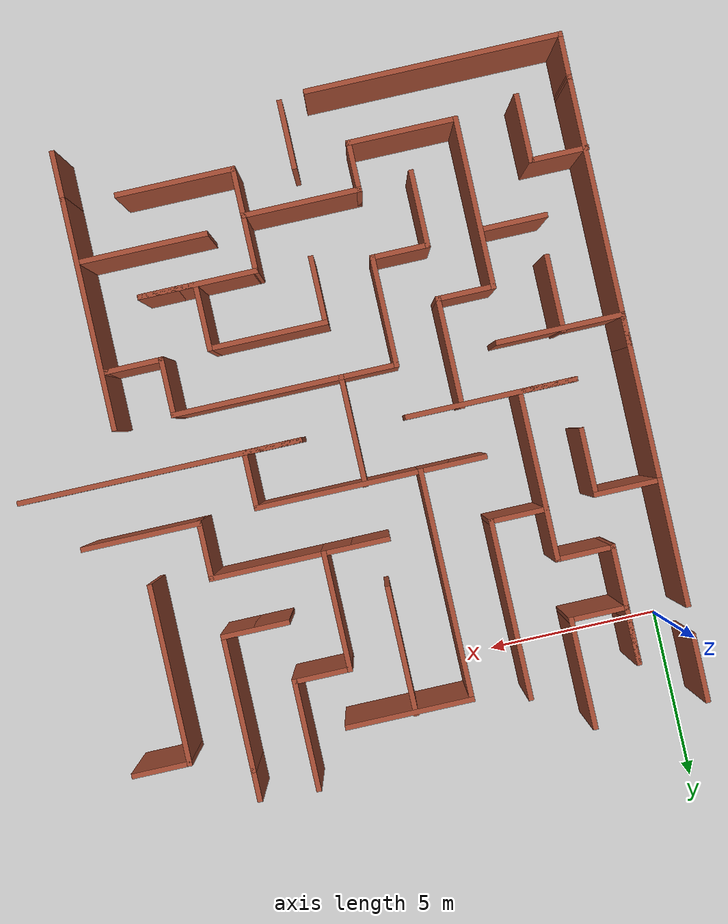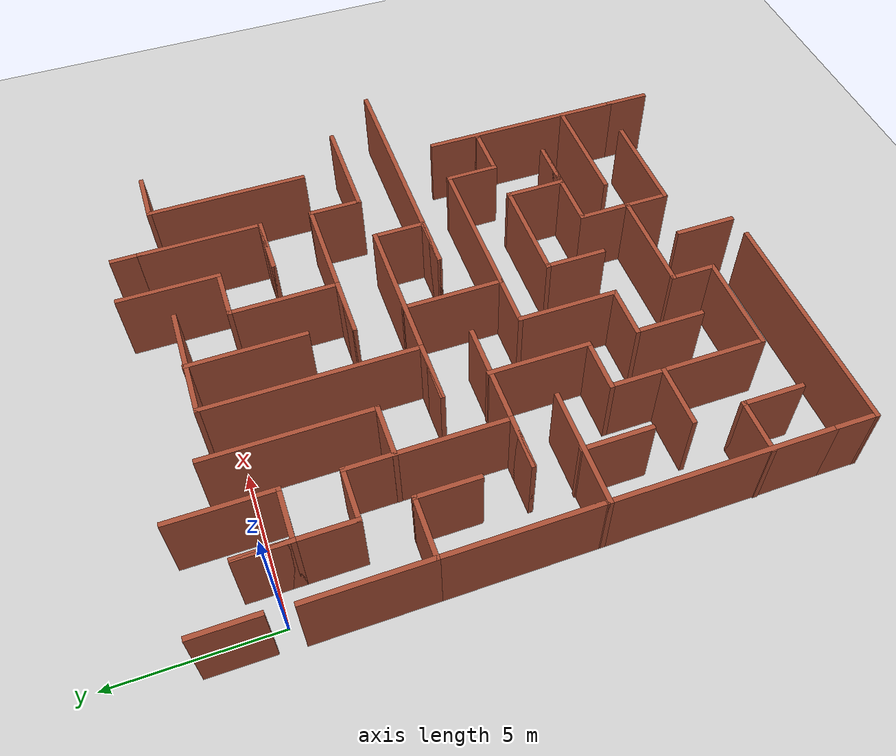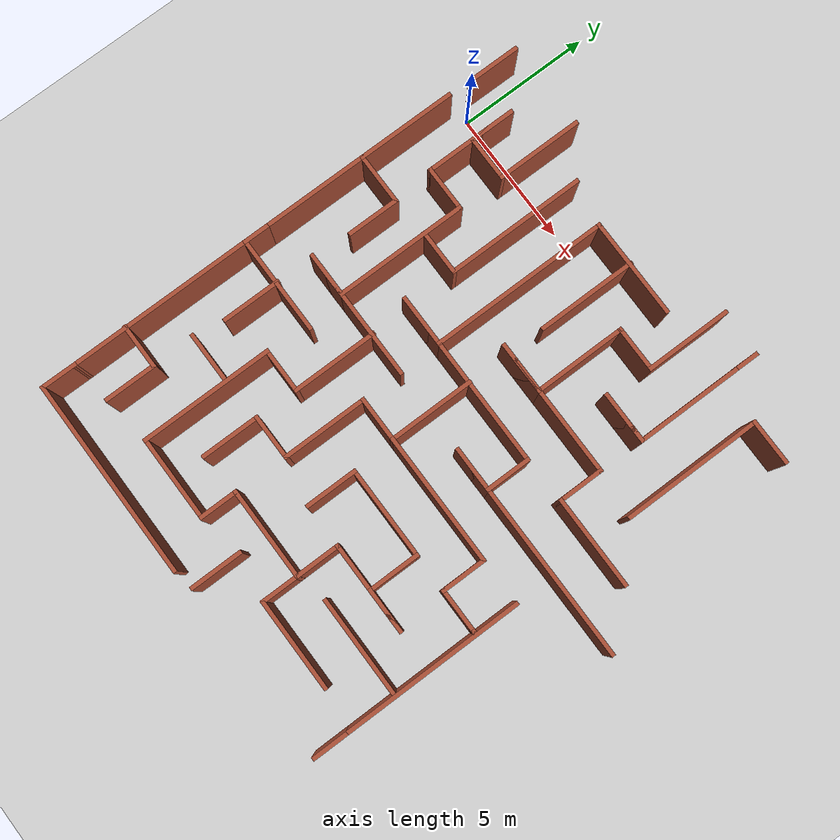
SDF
<sdf version="1.7">
 <world name="default">
  <model name="ground_plane">
   <static>1</static>
   <link name="link">
    <collision name="collision">
     <geometry><plane><normal>0 0 1</normal><size>100 100</size></plane></geometry>
     <surface>
      <contact><collide_bitmask>65535</collide_bitmask></contact>
      <friction><ode><mu>100</mu><mu2>50</mu2></ode></friction>
     </surface>
    </collision>
    <visual name="visual">
     <cast_shadows>0</cast_shadows>
     <geometry><plane><normal>0 0 1</normal><size>100 100</size></plane></geometry>
     <material>
      <script><uri>file://media/materials/scripts/gazebo.material</uri><name>Gazebo/Grey</name></script>
     </material>
    </visual>
   </link>
  </model>
  <model name="model_maze_2">
   <pose>15.6512 -7.28491 0 0 -0 0</pose>
   <link name="Wall_0">
    <collision name="Wall_0_Collision">
     <geometry><box><size>2 0.15 2.5</size></box></geometry>
     <pose>0 0 1.25 0 -0 0</pose>
    </collision>
    <visual name="Wall_0_Visual">
     <pose>0 0 1.25 0 -0 0</pose>
     <geometry><box><size>2 0.15 2.5</size></box></geometry>
     <material>
      <script><uri>file://media/materials/scripts/gazebo.material</uri><name>Gazebo/Bricks</name></script>
      <ambient>1 1 1 1</ambient>
     </material>
     <meta><layer>0</layer></meta>
    </visual>
    <pose>-16.1592 8.67968 0 0 -0 1.5708</pose>
   </link>
   <link name="Wall_10">
    <collision name="Wall_10_Collision">
     <geometry><box><size>1.75 0.15 2.5</size></box></geometry>
     <pose>0 0 1.25 0 -0 0</pose>
    </collision>
    <visual name="Wall_10_Visual">
     <pose>0 0 1.25 0 -0 0</pose>
     <geometry><box><size>1.75 0.15 2.5</size></box></geometry>
     <material>
      <script><uri>file://media/materials/scripts/gazebo.material</uri><name>Gazebo/Bricks</name></script>
      <ambient>1 1 1 1</ambient>
     </material>
     <meta><layer>0</layer></meta>
    </visual>
    <pose>-13.6978 -0.048612 0 0 -0 3.14159</pose>
   </link>
   <link name="Wall_11">
    <collision name="Wall_11_Collision">
     <geometry><box><size>5 0.15 2.5</size></box></geometry>
     <pose>0 0 1.25 0 -0 0</pose>
    </collision>
    <visual name="Wall_11_Visual">
     <pose>0 0 1.25 0 -0 0</pose>
     <geometry><box><size>5 0.15 2.5</size></box></geometry>
     <material>
      <script><uri>file://media/materials/scripts/gazebo.material</uri><name>Gazebo/Bricks</name></script>
      <ambient>1 1 1 1</ambient>
     </material>
     <meta><layer>0</layer></meta>
    </visual>
    <pose>-12.0728 -0.048612 0 0 -0 0</pose>
   </link>
   <link name="Wall_127">
    <collision name="Wall_127_Collision">
     <geometry><box><size>6.75 0.15 2.5</size></box></geometry>
     <pose>0 0 1.25 0 -0 0</pose>
    </collision>
    <visual name="Wall_127_Visual">
     <pose>0 0 1.25 0 -0 0</pose>
     <geometry><box><size>6.75 0.15 2.5</size></box></geometry>
     <material>
      <script><uri>file://media/materials/scripts/gazebo.material</uri><name>Gazebo/Bricks</name></script>
      <ambient>1 1 1 1</ambient>
     </material>
     <meta><layer>0</layer></meta>
    </visual>
    <pose>-1.48782 -4.85594 0 0 -0 -1.5708</pose>
   </link>
   <link name="Wall_13">
    <collision name="Wall_13_Collision">
     <geometry><box><size>3.75 0.15 2.5</size></box></geometry>
     <pose>0 0 1.25 0 -0 0</pose>
    </collision>
    <visual name="Wall_13_Visual">
     <pose>0 0 1.25 0 -0 0</pose>
     <geometry><box><size>3.75 0.15 2.5</size></box></geometry>
     <material>
      <script><uri>file://media/materials/scripts/gazebo.material</uri><name>Gazebo/Bricks</name></script>
      <ambient>1 1 1 1</ambient>
     </material>
     <meta><layer>0</layer></meta>
    </visual>
    <pose>-16.2054 5.05258 0 0 -0 -1.5708</pose>
   </link>
   <link name="Wall_130">
    <collision name="Wall_130_Collision">
     <geometry><box><size>1.75 0.15 2.5</size></box></geometry>
     <pose>0 0 1.25 0 -0 0</pose>
    </collision>
    <visual name="Wall_130_Visual">
     <pose>0 0 1.25 0 -0 0</pose>
     <geometry><box><size>1.75 0.15 2.5</size></box></geometry>
     <material>
      <script><uri>file://media/materials/scripts/gazebo.material</uri><name>Gazebo/Bricks</name></script>
      <ambient>1 1 1 1</ambient>
     </material>
     <meta><layer>0</layer></meta>
    </visual>
    <pose>-8.86181 -1.55587 0 0 -0 3.14159</pose>
   </link>
   <link name="Wall_131">
    <collision name="Wall_131_Collision">
     <geometry><box><size>3.25 0.15 2.5</size></box></geometry>
     <pose>0 0 1.25 0 -0 0</pose>
    </collision>
    <visual name="Wall_131_Visual">
     <pose>0 0 1.25 0 -0 0</pose>
     <geometry><box><size>3.25 0.15 2.5</size></box></geometry>
     <material>
      <script><uri>file://media/materials/scripts/gazebo.material</uri><name>Gazebo/Bricks</name></script>
      <ambient>1 1 1 1</ambient>
     </material>
     <meta><layer>0</layer></meta>
    </visual>
    <pose>-9.66181 -3.10587 0 0 -0 -1.5708</pose>
   </link>
   <link name="Wall_132">
    <collision name="Wall_132_Collision">
     <geometry><box><size>1.75 0.15 2.5</size></box></geometry>
     <pose>0 0 1.25 0 -0 0</pose>
    </collision>
    <visual name="Wall_132_Visual">
     <pose>0 0 1.25 0 -0 0</pose>
     <geometry><box><size>1.75 0.15 2.5</size></box></geometry>
     <material>
      <script><uri>file://media/materials/scripts/gazebo.material</uri><name>Gazebo/Bricks</name></script>
      <ambient>1 1 1 1</ambient>
     </material>
     <meta><layer>0</layer></meta>
    </visual>
    <pose>-10.4618 -4.65587 0 0 -0 3.14159</pose>
   </link>
   <link name="Wall_133">
    <collision name="Wall_133_Collision">
     <geometry><box><size>2.25 0.15 2.5</size></box></geometry>
     <pose>0 0 1.25 0 -0 0</pose>
    </collision>
    <visual name="Wall_133_Visual">
     <pose>0 0 1.25 0 -0 0</pose>
     <geometry><box><size>2.25 0.15 2.5</size></box></geometry>
     <material>
      <script><uri>file://media/materials/scripts/gazebo.material</uri><name>Gazebo/Bricks</name></script>
      <ambient>1 1 1 1</ambient>
     </material>
     <meta><layer>0</layer></meta>
    </visual>
    <pose>-11.2618 -5.70587 0 0 -0 -1.5708</pose>
   </link>
   <link name="Wall_135">
    <collision name="Wall_135_Collision">
     <geometry><box><size>5 0.15 2.5</size></box></geometry>
     <pose>0 0 1.25 0 -0 0</pose>
    </collision>
    <visual name="Wall_135_Visual">
     <pose>0 0 1.25 0 -0 0</pose>
     <geometry><box><size>5 0.15 2.5</size></box></geometry>
     <material>
      <script><uri>file://media/materials/scripts/gazebo.material</uri><name>Gazebo/Bricks</name></script>
      <ambient>1 1 1 1</ambient>
     </material>
     <meta><layer>0</layer></meta>
    </visual>
    <pose>-5.63681 -1.55587 0 0 -0 0</pose>
   </link>
   <link name="Wall_136">
    <collision name="Wall_136_Collision">
     <geometry><box><size>1.75 0.15 2.5</size></box></geometry>
     <pose>0 0 1.25 0 -0 0</pose>
    </collision>
    <visual name="Wall_136_Visual">
     <pose>0 0 1.25 0 -0 0</pose>
     <geometry><box><size>1.75 0.15 2.5</size></box></geometry>
     <material>
      <script><uri>file://media/materials/scripts/gazebo.material</uri><name>Gazebo/Bricks</name></script>
      <ambient>1 1 1 1</ambient>
     </material>
     <meta><layer>0</layer></meta>
    </visual>
    <pose>-3.21181 -2.35587 0 0 -0 -1.5708</pose>
   </link>
   <link name="Wall_137">
    <collision name="Wall_137_Collision">
     <geometry><box><size>1.75 0.15 2.5</size></box></geometry>
     <pose>0 0 1.25 0 -0 0</pose>
    </collision>
    <visual name="Wall_137_Visual">
     <pose>0 0 1.25 0 -0 0</pose>
     <geometry><box><size>1.75 0.15 2.5</size></box></geometry>
     <material>
      <script><uri>file://media/materials/scripts/gazebo.material</uri><name>Gazebo/Bricks</name></script>
      <ambient>1 1 1 1</ambient>
     </material>
     <meta><layer>0</layer></meta>
    </visual>
    <pose>-2.41181 -3.15587 0 0 -0 0</pose>
   </link>
   <link name="Wall_138">
    <collision name="Wall_138_Collision">
     <geometry><box><size>0.15 0.15 2.5</size></box></geometry>
     <pose>0 0 1.25 0 -0 0</pose>
    </collision>
    <visual name="Wall_138_Visual">
     <pose>0 0 1.25 0 -0 0</pose>
     <geometry><box><size>0.15 0.15 2.5</size></box></geometry>
     <material>
      <script><uri>file://media/materials/scripts/gazebo.material</uri><name>Gazebo/Bricks</name></script>
      <ambient>1 1 1 1</ambient>
     </material>
     <meta><layer>0</layer></meta>
    </visual>
    <pose>-1.61181 -3.15587 0 0 -0 0</pose>
   </link>
   <link name="Wall_14">
    <collision name="Wall_14_Collision">
     <geometry><box><size>2 0.15 2.5</size></box></geometry>
     <pose>0 0 1.25 0 -0 0</pose>
    </collision>
    <visual name="Wall_14_Visual">
     <pose>0 0 1.25 0 -0 0</pose>
     <geometry><box><size>2 0.15 2.5</size></box></geometry>
     <material>
      <script><uri>file://media/materials/scripts/gazebo.material</uri><name>Gazebo/Bricks</name></script>
      <ambient>1 1 1 1</ambient>
     </material>
     <meta><layer>0</layer></meta>
    </visual>
    <pose>-15.2804 3.25258 0 0 -0 0</pose>
   </link>
   <link name="Wall_140">
    <collision name="Wall_140_Collision">
     <geometry><box><size>3.25 0.15 2.5</size></box></geometry>
     <pose>0 0 1.25 0 -0 0</pose>
    </collision>
    <visual name="Wall_140_Visual">
     <pose>0 0 1.25 0 -0 0</pose>
     <geometry><box><size>3.25 0.15 2.5</size></box></geometry>
     <material>
      <script><uri>file://media/materials/scripts/gazebo.material</uri><name>Gazebo/Bricks</name></script>
      <ambient>1 1 1 1</ambient>
     </material>
     <meta><layer>0</layer></meta>
    </visual>
    <pose>-11.2176 -1.56101 0 0 -0 -1.5708</pose>
   </link>
   <link name="Wall_141">
    <collision name="Wall_141_Collision">
     <geometry><box><size>1.75 0.15 2.5</size></box></geometry>
     <pose>0 0 1.25 0 -0 0</pose>
    </collision>
    <visual name="Wall_141_Visual">
     <pose>0 0 1.25 0 -0 0</pose>
     <geometry><box><size>1.75 0.15 2.5</size></box></geometry>
     <material>
      <script><uri>file://media/materials/scripts/gazebo.material</uri><name>Gazebo/Bricks</name></script>
      <ambient>1 1 1 1</ambient>
     </material>
     <meta><layer>0</layer></meta>
    </visual>
    <pose>-12.0176 -3.11101 0 0 -0 3.14159</pose>
   </link>
   <link name="Wall_142">
    <collision name="Wall_142_Collision">
     <geometry><box><size>5 0.15 2.5</size></box></geometry>
     <pose>0 0 1.25 0 -0 0</pose>
    </collision>
    <visual name="Wall_142_Visual">
     <pose>0 0 1.25 0 -0 0</pose>
     <geometry><box><size>5 0.15 2.5</size></box></geometry>
     <material>
      <script><uri>file://media/materials/scripts/gazebo.material</uri><name>Gazebo/Bricks</name></script>
      <ambient>1 1 1 1</ambient>
     </material>
     <meta><layer>0</layer></meta>
    </visual>
    <pose>-12.8176 -5.53601 0 0 -0 -1.5708</pose>
   </link>
   <link name="Wall_143">
    <collision name="Wall_143_Collision">
     <geometry><box><size>3.25 0.15 2.5</size></box></geometry>
     <pose>0 0 1.25 0 -0 0</pose>
    </collision>
    <visual name="Wall_143_Visual">
     <pose>0 0 1.25 0 -0 0</pose>
     <geometry><box><size>3.25 0.15 2.5</size></box></geometry>
     <material>
      <script><uri>file://media/materials/scripts/gazebo.material</uri><name>Gazebo/Bricks</name></script>
      <ambient>1 1 1 1</ambient>
     </material>
     <meta><layer>0</layer></meta>
    </visual>
    <pose>-11.2676 -7.96101 0 0 -0 0</pose>
   </link>
   <link name="Wall_144">
    <collision name="Wall_144_Collision">
     <geometry><box><size>1.5 0.15 2.5</size></box></geometry>
     <pose>0 0 1.25 0 -0 0</pose>
    </collision>
    <visual name="Wall_144_Visual">
     <pose>0 0 1.25 0 -0 0</pose>
     <geometry><box><size>1.5 0.15 2.5</size></box></geometry>
     <material>
      <script><uri>file://media/materials/scripts/gazebo.material</uri><name>Gazebo/Bricks</name></script>
      <ambient>1 1 1 1</ambient>
     </material>
     <meta><layer>0</layer></meta>
    </visual>
    <pose>-9.71757 -7.28601 0 0 -0 1.5708</pose>
   </link>
   <link name="Wall_145">
    <collision name="Wall_145_Collision">
     <geometry><box><size>3.5 0.15 2.5</size></box></geometry>
     <pose>0 0 1.25 0 -0 0</pose>
    </collision>
    <visual name="Wall_145_Visual">
     <pose>0 0 1.25 0 -0 0</pose>
     <geometry><box><size>3.5 0.15 2.5</size></box></geometry>
     <material>
      <script><uri>file://media/materials/scripts/gazebo.material</uri><name>Gazebo/Bricks</name></script>
      <ambient>1 1 1 1</ambient>
     </material>
     <meta><layer>0</layer></meta>
    </visual>
    <pose>-8.04257 -6.61101 0 0 -0 0</pose>
   </link>
   <link name="Wall_146">
    <collision name="Wall_146_Collision">
     <geometry><box><size>1.75 0.15 2.5</size></box></geometry>
     <pose>0 0 1.25 0 -0 0</pose>
    </collision>
    <visual name="Wall_146_Visual">
     <pose>0 0 1.25 0 -0 0</pose>
     <geometry><box><size>1.75 0.15 2.5</size></box></geometry>
     <material>
      <script><uri>file://media/materials/scripts/gazebo.material</uri><name>Gazebo/Bricks</name></script>
      <ambient>1 1 1 1</ambient>
     </material>
     <meta><layer>0</layer></meta>
    </visual>
    <pose>-6.36757 -5.81101 0 0 -0 1.5708</pose>
   </link>
   <link name="Wall_147">
    <collision name="Wall_147_Collision">
     <geometry><box><size>3.5 0.15 2.5</size></box></geometry>
     <pose>0 0 1.25 0 -0 0</pose>
    </collision>
    <visual name="Wall_147_Visual">
     <pose>0 0 1.25 0 -0 0</pose>
     <geometry><box><size>3.5 0.15 2.5</size></box></geometry>
     <material>
      <script><uri>file://media/materials/scripts/gazebo.material</uri><name>Gazebo/Bricks</name></script>
      <ambient>1 1 1 1</ambient>
     </material>
     <meta><layer>0</layer></meta>
    </visual>
    <pose>-4.69257 -5.01101 0 0 -0 0</pose>
   </link>
   <link name="Wall_148">
    <collision name="Wall_148_Collision">
     <geometry><box><size>1.75 0.15 2.5</size></box></geometry>
     <pose>0 0 1.25 0 -0 0</pose>
    </collision>
    <visual name="Wall_148_Visual">
     <pose>0 0 1.25 0 -0 0</pose>
     <geometry><box><size>1.75 0.15 2.5</size></box></geometry>
     <material>
      <script><uri>file://media/materials/scripts/gazebo.material</uri><name>Gazebo/Bricks</name></script>
      <ambient>1 1 1 1</ambient>
     </material>
     <meta><layer>0</layer></meta>
    </visual>
    <pose>-3.81757 -5.01101 0 0 -0 3.14159</pose>
   </link>
   <link name="Wall_149">
    <collision name="Wall_149_Collision">
     <geometry><box><size>2 0.15 2.5</size></box></geometry>
     <pose>0 0 1.25 0 -0 0</pose>
    </collision>
    <visual name="Wall_149_Visual">
     <pose>0 0 1.25 0 -0 0</pose>
     <geometry><box><size>2 0.15 2.5</size></box></geometry>
     <material>
      <script><uri>file://media/materials/scripts/gazebo.material</uri><name>Gazebo/Bricks</name></script>
      <ambient>1 1 1 1</ambient>
     </material>
     <meta><layer>0</layer></meta>
    </visual>
    <pose>-4.61757 -4.08601 0 0 -0 1.5708</pose>
   </link>
   <link name="Wall_15">
    <collision name="Wall_15_Collision">
     <geometry><box><size>2 0.15 2.5</size></box></geometry>
     <pose>0 0 1.25 0 -0 0</pose>
    </collision>
    <visual name="Wall_15_Visual">
     <pose>0 0 1.25 0 -0 0</pose>
     <geometry><box><size>2 0.15 2.5</size></box></geometry>
     <material>
      <script><uri>file://media/materials/scripts/gazebo.material</uri><name>Gazebo/Bricks</name></script>
      <ambient>1 1 1 1</ambient>
     </material>
     <meta><layer>0</layer></meta>
    </visual>
    <pose>-14.3554 2.32758 0 0 -0 -1.5708</pose>
   </link>
   <link name="Wall_150">
    <collision name="Wall_150_Collision">
     <geometry><box><size>3.5 0.15 2.5</size></box></geometry>
     <pose>0 0 1.25 0 -0 0</pose>
    </collision>
    <visual name="Wall_150_Visual">
     <pose>0 0 1.25 0 -0 0</pose>
     <geometry><box><size>3.5 0.15 2.5</size></box></geometry>
     <material>
      <script><uri>file://media/materials/scripts/gazebo.material</uri><name>Gazebo/Bricks</name></script>
      <ambient>1 1 1 1</ambient>
     </material>
     <meta><layer>0</layer></meta>
    </visual>
    <pose>-6.29257 -3.16101 0 0 -0 3.14159</pose>
   </link>
   <link name="Wall_151">
    <collision name="Wall_151_Collision">
     <geometry><box><size>2 0.15 2.5</size></box></geometry>
     <pose>0 0 1.25 0 -0 0</pose>
    </collision>
    <visual name="Wall_151_Visual">
     <pose>0 0 1.25 0 -0 0</pose>
     <geometry><box><size>2 0.15 2.5</size></box></geometry>
     <material>
      <script><uri>file://media/materials/scripts/gazebo.material</uri><name>Gazebo/Bricks</name></script>
      <ambient>1 1 1 1</ambient>
     </material>
     <meta><layer>0</layer></meta>
    </visual>
    <pose>-7.96757 -4.08601 0 0 -0 -1.5708</pose>
   </link>
   <link name="Wall_153">
    <collision name="Wall_153_Collision">
     <geometry><box><size>3.75 0.15 2.5</size></box></geometry>
     <pose>0 0 1.25 0 -0 0</pose>
    </collision>
    <visual name="Wall_153_Visual">
     <pose>0 0 1.25 0 -0 0</pose>
     <geometry><box><size>3.75 0.15 2.5</size></box></geometry>
     <material>
      <script><uri>file://media/materials/scripts/gazebo.material</uri><name>Gazebo/Bricks</name></script>
      <ambient>1 1 1 1</ambient>
     </material>
     <meta><layer>0</layer></meta>
    </visual>
    <pose>-14.4054 -1.53763 0 0 -0 3.14159</pose>
   </link>
   <link name="Wall_154">
    <collision name="Wall_154_Collision">
     <geometry><box><size>0.15 0.15 2.5</size></box></geometry>
     <pose>0 0 1.25 0 -0 0</pose>
    </collision>
    <visual name="Wall_154_Visual">
     <pose>0 0 1.25 0 -0 0</pose>
     <geometry><box><size>0.15 0.15 2.5</size></box></geometry>
     <material>
      <script><uri>file://media/materials/scripts/gazebo.material</uri><name>Gazebo/Bricks</name></script>
      <ambient>1 1 1 1</ambient>
     </material>
     <meta><layer>0</layer></meta>
    </visual>
    <pose>-16.2054 -1.53763 0 0 -0 0</pose>
   </link>
   <link name="Wall_155">
    <collision name="Wall_155_Collision">
     <geometry><box><size>1 0.15 2.5</size></box></geometry>
     <pose>0 0 1.25 0 -0 0</pose>
    </collision>
    <visual name="Wall_155_Visual">
     <pose>0 0 1.25 0 -0 0</pose>
     <geometry><box><size>1 0.15 2.5</size></box></geometry>
     <material>
      <script><uri>file://media/materials/scripts/gazebo.material</uri><name>Gazebo/Bricks</name></script>
      <ambient>1 1 1 1</ambient>
     </material>
     <meta><layer>0</layer></meta>
    </visual>
    <pose>-16.2054 -1.11263 0 0 -0 1.5708</pose>
   </link>
   <link name="Wall_157">
    <collision name="Wall_157_Collision">
     <geometry><box><size>2.25 0.15 2.5</size></box></geometry>
     <pose>0 0 1.25 0 -0 0</pose>
    </collision>
    <visual name="Wall_157_Visual">
     <pose>0 0 1.25 0 -0 0</pose>
     <geometry><box><size>2.25 0.15 2.5</size></box></geometry>
     <material>
      <script><uri>file://media/materials/scripts/gazebo.material</uri><name>Gazebo/Bricks</name></script>
      <ambient>1 1 1 1</ambient>
     </material>
     <meta><layer>0</layer></meta>
    </visual>
    <pose>-14.479 -2.54137 0 0 -0 -1.5708</pose>
   </link>
   <link name="Wall_159">
    <collision name="Wall_159_Collision">
     <geometry><box><size>7 0.15 2.5</size></box></geometry>
     <pose>0 0 1.25 0 -0 0</pose>
    </collision>
    <visual name="Wall_159_Visual">
     <pose>0 0 1.25 0 -0 0</pose>
     <geometry><box><size>7 0.15 2.5</size></box></geometry>
     <material>
      <script><uri>file://media/materials/scripts/gazebo.material</uri><name>Gazebo/Bricks</name></script>
      <ambient>1 1 1 1</ambient>
     </material>
     <meta><layer>0</layer></meta>
    </visual>
    <pose>-16.2054 -4.96263 0 0 -0 -1.5708</pose>
   </link>
   <link name="Wall_161">
    <collision name="Wall_161_Collision">
     <geometry><box><size>2 0.15 2.5</size></box></geometry>
     <pose>0 0 1.25 0 -0 0</pose>
    </collision>
    <visual name="Wall_161_Visual">
     <pose>0 0 1.25 0 -0 0</pose>
     <geometry><box><size>2 0.15 2.5</size></box></geometry>
     <material>
      <script><uri>file://media/materials/scripts/gazebo.material</uri><name>Gazebo/Bricks</name></script>
      <ambient>1 1 1 1</ambient>
     </material>
     <meta><layer>0</layer></meta>
    </visual>
    <pose>-13.7617 -4.75279 0 0 -0 3.14159</pose>
   </link>
   <link name="Wall_163">
    <collision name="Wall_163_Collision">
     <geometry><box><size>1.75 0.15 2.5</size></box></geometry>
     <pose>0 0 1.25 0 -0 0</pose>
    </collision>
    <visual name="Wall_163_Visual">
     <pose>0 0 1.25 0 -0 0</pose>
     <geometry><box><size>1.75 0.15 2.5</size></box></geometry>
     <material>
      <script><uri>file://media/materials/scripts/gazebo.material</uri><name>Gazebo/Bricks</name></script>
      <ambient>1 1 1 1</ambient>
     </material>
     <meta><layer>0</layer></meta>
    </visual>
    <pose>-15.4369 -6.3488 0 0 -0 0</pose>
   </link>
   <link name="Wall_164">
    <collision name="Wall_164_Collision">
     <geometry><box><size>2 0.15 2.5</size></box></geometry>
     <pose>0 0 1.25 0 -0 0</pose>
    </collision>
    <visual name="Wall_164_Visual">
     <pose>0 0 1.25 0 -0 0</pose>
     <geometry><box><size>2 0.15 2.5</size></box></geometry>
     <material>
      <script><uri>file://media/materials/scripts/gazebo.material</uri><name>Gazebo/Bricks</name></script>
      <ambient>1 1 1 1</ambient>
     </material>
     <meta><layer>0</layer></meta>
    </visual>
    <pose>-14.6369 -7.2738 0 0 -0 -1.5708</pose>
   </link>
   <link name="Wall_17">
    <collision name="Wall_17_Collision">
     <geometry><box><size>4.75 0.15 2.5</size></box></geometry>
     <pose>0 0 1.25 0 -0 0</pose>
    </collision>
    <visual name="Wall_17_Visual">
     <pose>0 0 1.25 0 -0 0</pose>
     <geometry><box><size>4.75 0.15 2.5</size></box></geometry>
     <material>
      <script><uri>file://media/materials/scripts/gazebo.material</uri><name>Gazebo/Bricks</name></script>
      <ambient>1 1 1 1</ambient>
     </material>
     <meta><layer>0</layer></meta>
    </visual>
    <pose>-16.2054 0.952584 0 0 -0 -1.5708</pose>
   </link>
   <link name="Wall_170">
    <collision name="Wall_170_Collision">
     <geometry><box><size>3.75 0.15 2.5</size></box></geometry>
     <pose>0 0 1.25 0 -0 0</pose>
    </collision>
    <visual name="Wall_170_Visual">
     <pose>0 0 1.25 0 -0 0</pose>
     <geometry><box><size>3.75 0.15 2.5</size></box></geometry>
     <material>
      <script><uri>file://media/materials/scripts/gazebo.material</uri><name>Gazebo/Bricks</name></script>
      <ambient>1 1 1 1</ambient>
     </material>
     <meta><layer>0</layer></meta>
    </visual>
    <pose>-3.40204 -6.3451 0 0 -0 0</pose>
   </link>
   <link name="Wall_181">
    <collision name="Wall_181_Collision">
     <geometry><box><size>1.5 0.15 2.5</size></box></geometry>
     <pose>0 0 1.25 0 -0 0</pose>
    </collision>
    <visual name="Wall_181_Visual">
     <pose>0 0 1.25 0 -0 0</pose>
     <geometry><box><size>1.5 0.15 2.5</size></box></geometry>
     <material>
      <script><uri>file://media/materials/scripts/gazebo.material</uri><name>Gazebo/Bricks</name></script>
      <ambient>1 1 1 1</ambient>
     </material>
     <meta><layer>0</layer></meta>
    </visual>
    <pose>-1.48782 -8.83094 0 0 -0 -1.5708</pose>
   </link>
   <link name="Wall_187">
    <collision name="Wall_187_Collision">
     <geometry><box><size>1.5 0.15 2.5</size></box></geometry>
     <pose>0 0 1.25 0 -0 0</pose>
    </collision>
    <visual name="Wall_187_Visual">
     <pose>0 0 1.25 0 -0 0</pose>
     <geometry><box><size>1.5 0.15 2.5</size></box></geometry>
     <material>
      <script><uri>file://media/materials/scripts/gazebo.material</uri><name>Gazebo/Bricks</name></script>
      <ambient>1 1 1 1</ambient>
     </material>
     <meta><layer>0</layer></meta>
    </visual>
    <pose>-6.36757 -7.28601 0 0 -0 -1.5708</pose>
   </link>
   <link name="Wall_188">
    <collision name="Wall_188_Collision">
     <geometry><box><size>3.5 0.15 2.5</size></box></geometry>
     <pose>0 0 1.25 0 -0 0</pose>
    </collision>
    <visual name="Wall_188_Visual">
     <pose>0 0 1.25 0 -0 0</pose>
     <geometry><box><size>3.5 0.15 2.5</size></box></geometry>
     <material>
      <script><uri>file://media/materials/scripts/gazebo.material</uri><name>Gazebo/Bricks</name></script>
      <ambient>1 1 1 1</ambient>
     </material>
     <meta><layer>0</layer></meta>
    </visual>
    <pose>-4.69257 -7.96101 0 0 -0 0</pose>
   </link>
   <link name="Wall_19">
    <collision name="Wall_19_Collision">
     <geometry><box><size>5.25 0.15 2.5</size></box></geometry>
     <pose>0 0 1.25 0 -0 0</pose>
    </collision>
    <visual name="Wall_19_Visual">
     <pose>0 0 1.25 0 -0 0</pose>
     <geometry><box><size>5.25 0.15 2.5</size></box></geometry>
     <material>
      <script><uri>file://media/materials/scripts/gazebo.material</uri><name>Gazebo/Bricks</name></script>
      <ambient>1 1 1 1</ambient>
     </material>
     <meta><layer>0</layer></meta>
    </visual>
    <pose>-11.3017 5.8986 0 0 -0 -1.5708</pose>
   </link>
   <link name="Wall_190">
    <collision name="Wall_190_Collision">
     <geometry><box><size>2 0.15 2.5</size></box></geometry>
     <pose>0 0 1.25 0 -0 0</pose>
    </collision>
    <visual name="Wall_190_Visual">
     <pose>0 0 1.25 0 -0 0</pose>
     <geometry><box><size>2 0.15 2.5</size></box></geometry>
     <material>
      <script><uri>file://media/materials/scripts/gazebo.material</uri><name>Gazebo/Bricks</name></script>
      <ambient>1 1 1 1</ambient>
     </material>
     <meta><layer>0</layer></meta>
    </visual>
    <pose>-8.06834 -8.56956 0 0 -0 -1.5708</pose>
   </link>
   <link name="Wall_192">
    <collision name="Wall_192_Collision">
     <geometry><box><size>7.5 0.15 2.5</size></box></geometry>
     <pose>0 0 1.25 0 -0 0</pose>
    </collision>
    <visual name="Wall_192_Visual">
     <pose>0 0 1.25 0 -0 0</pose>
     <geometry><box><size>7.5 0.15 2.5</size></box></geometry>
     <material>
      <script><uri>file://media/materials/scripts/gazebo.material</uri><name>Gazebo/Bricks</name></script>
      <ambient>1 1 1 1</ambient>
     </material>
     <meta><layer>0</layer></meta>
    </visual>
    <pose>-12.5381 -9.64031 0 0 -0 3.14159</pose>
   </link>
   <link name="Wall_193">
    <collision name="Wall_193_Collision">
     <geometry><box><size>1.40271 0.15 2.5</size></box></geometry>
     <pose>0 0 1.25 0 -0 0</pose>
    </collision>
    <visual name="Wall_193_Visual">
     <pose>0 0 1.25 0 -0 0</pose>
     <geometry><box><size>1.40271 0.15 2.5</size></box></geometry>
     <material>
      <script><uri>file://media/materials/scripts/gazebo.material</uri><name>Gazebo/Bricks</name></script>
      <ambient>1 1 1 1</ambient>
     </material>
     <meta><layer>0</layer></meta>
    </visual>
    <pose>-16.2092 -9.01397 0 0 -0 1.56466</pose>
   </link>
   <link name="Wall_20">
    <collision name="Wall_20_Collision">
     <geometry><box><size>1.75 0.15 2.5</size></box></geometry>
     <pose>0 0 1.25 0 -0 0</pose>
    </collision>
    <visual name="Wall_20_Visual">
     <pose>0 0 1.25 0 -0 0</pose>
     <geometry><box><size>1.75 0.15 2.5</size></box></geometry>
     <material>
      <script><uri>file://media/materials/scripts/gazebo.material</uri><name>Gazebo/Bricks</name></script>
      <ambient>1 1 1 1</ambient>
     </material>
     <meta><layer>0</layer></meta>
    </visual>
    <pose>-12.1017 3.3486 0 0 -0 3.14159</pose>
   </link>
   <link name="Wall_22">
    <collision name="Wall_22_Collision">
     <geometry><box><size>3.75 0.15 2.5</size></box></geometry>
     <pose>0 0 1.25 0 -0 0</pose>
    </collision>
    <visual name="Wall_22_Visual">
     <pose>0 0 1.25 0 -0 0</pose>
     <geometry><box><size>3.75 0.15 2.5</size></box></geometry>
     <material>
      <script><uri>file://media/materials/scripts/gazebo.material</uri><name>Gazebo/Bricks</name></script>
      <ambient>1 1 1 1</ambient>
     </material>
     <meta><layer>0</layer></meta>
    </visual>
    <pose>-7.87423 8.12477 0 0 -0 3.14159</pose>
   </link>
   <link name="Wall_23">
    <collision name="Wall_23_Collision">
     <geometry><box><size>6.75 0.15 2.5</size></box></geometry>
     <pose>0 0 1.25 0 -0 0</pose>
    </collision>
    <visual name="Wall_23_Visual">
     <pose>0 0 1.25 0 -0 0</pose>
     <geometry><box><size>6.75 0.15 2.5</size></box></geometry>
     <material>
      <script><uri>file://media/materials/scripts/gazebo.material</uri><name>Gazebo/Bricks</name></script>
      <ambient>1 1 1 1</ambient>
     </material>
     <meta><layer>0</layer></meta>
    </visual>
    <pose>-9.67423 4.82477 0 0 -0 -1.5708</pose>
   </link>
   <link name="Wall_24">
    <collision name="Wall_24_Collision">
     <geometry><box><size>2 0.15 2.5</size></box></geometry>
     <pose>0 0 1.25 0 -0 0</pose>
    </collision>
    <visual name="Wall_24_Visual">
     <pose>0 0 1.25 0 -0 0</pose>
     <geometry><box><size>2 0.15 2.5</size></box></geometry>
     <material>
      <script><uri>file://media/materials/scripts/gazebo.material</uri><name>Gazebo/Bricks</name></script>
      <ambient>1 1 1 1</ambient>
     </material>
     <meta><layer>0</layer></meta>
    </visual>
    <pose>-10.5992 1.52477 0 0 -0 3.14159</pose>
   </link>
   <link name="Wall_25">
    <collision name="Wall_25_Collision">
     <geometry><box><size>6.75 0.15 2.5</size></box></geometry>
     <pose>0 0 1.25 0 -0 0</pose>
    </collision>
    <visual name="Wall_25_Visual">
     <pose>0 0 1.25 0 -0 0</pose>
     <geometry><box><size>6.75 0.15 2.5</size></box></geometry>
     <material>
      <script><uri>file://media/materials/scripts/gazebo.material</uri><name>Gazebo/Bricks</name></script>
      <ambient>1 1 1 1</ambient>
     </material>
     <meta><layer>0</layer></meta>
    </visual>
    <pose>-8.22423 1.52477 0 0 -0 0</pose>
   </link>
   <link name="Wall_26">
    <collision name="Wall_26_Collision">
     <geometry><box><size>1.75 0.15 2.5</size></box></geometry>
     <pose>0 0 1.25 0 -0 0</pose>
    </collision>
    <visual name="Wall_26_Visual">
     <pose>0 0 1.25 0 -0 0</pose>
     <geometry><box><size>1.75 0.15 2.5</size></box></geometry>
     <material>
      <script><uri>file://media/materials/scripts/gazebo.material</uri><name>Gazebo/Bricks</name></script>
      <ambient>1 1 1 1</ambient>
     </material>
     <meta><layer>0</layer></meta>
    </visual>
    <pose>-4.92422 0.724768 0 0 -0 -1.5708</pose>
   </link>
   <link name="Wall_27">
    <collision name="Wall_27_Collision">
     <geometry><box><size>1.75 0.15 2.5</size></box></geometry>
     <pose>0 0 1.25 0 -0 0</pose>
    </collision>
    <visual name="Wall_27_Visual">
     <pose>0 0 1.25 0 -0 0</pose>
     <geometry><box><size>1.75 0.15 2.5</size></box></geometry>
     <material>
      <script><uri>file://media/materials/scripts/gazebo.material</uri><name>Gazebo/Bricks</name></script>
      <ambient>1 1 1 1</ambient>
     </material>
     <meta><layer>0</layer></meta>
    </visual>
    <pose>-5.72423 -0.075232 0 0 -0 3.14159</pose>
   </link>
   <link name="Wall_28">
    <collision name="Wall_28_Collision">
     <geometry><box><size>8.25 0.15 2.5</size></box></geometry>
     <pose>0 0 1.25 0 -0 0</pose>
    </collision>
    <visual name="Wall_28_Visual">
     <pose>0 0 1.25 0 -0 0</pose>
     <geometry><box><size>8.25 0.15 2.5</size></box></geometry>
     <material>
      <script><uri>file://media/materials/scripts/gazebo.material</uri><name>Gazebo/Bricks</name></script>
      <ambient>1 1 1 1</ambient>
     </material>
     <meta><layer>0</layer></meta>
    </visual>
    <pose>-2.47423 -0.075232 0 0 -0 0</pose>
   </link>
   <link name="Wall_34">
    <collision name="Wall_34_Collision">
     <geometry><box><size>2 0.15 2.5</size></box></geometry>
     <pose>0 0 1.25 0 -0 0</pose>
    </collision>
    <visual name="Wall_34_Visual">
     <pose>0 0 1.25 0 -0 0</pose>
     <geometry><box><size>2 0.15 2.5</size></box></geometry>
     <material>
      <script><uri>file://media/materials/scripts/gazebo.material</uri><name>Gazebo/Bricks</name></script>
      <ambient>1 1 1 1</ambient>
     </material>
     <meta><layer>0</layer></meta>
    </visual>
    <pose>-4.13103 4.86335 0 0 -0 3.14159</pose>
   </link>
   <link name="Wall_35">
    <collision name="Wall_35_Collision">
     <geometry><box><size>2 0.15 2.5</size></box></geometry>
     <pose>0 0 1.25 0 -0 0</pose>
    </collision>
    <visual name="Wall_35_Visual">
     <pose>0 0 1.25 0 -0 0</pose>
     <geometry><box><size>2 0.15 2.5</size></box></geometry>
     <material>
      <script><uri>file://media/materials/scripts/gazebo.material</uri><name>Gazebo/Bricks</name></script>
      <ambient>1 1 1 1</ambient>
     </material>
     <meta><layer>0</layer></meta>
    </visual>
    <pose>-4.13103 4.86335 0 0 -0 0</pose>
   </link>
   <link name="Wall_36">
    <collision name="Wall_36_Collision">
     <geometry><box><size>4 0.15 2.5</size></box></geometry>
     <pose>0 0 1.25 0 -0 0</pose>
    </collision>
    <visual name="Wall_36_Visual">
     <pose>0 0 1.25 0 -0 0</pose>
     <geometry><box><size>4 0.15 2.5</size></box></geometry>
     <material>
      <script><uri>file://media/materials/scripts/gazebo.material</uri><name>Gazebo/Bricks</name></script>
      <ambient>1 1 1 1</ambient>
     </material>
     <meta><layer>0</layer></meta>
    </visual>
    <pose>-3.20603 6.78835 0 0 -0 1.5708</pose>
   </link>
   <link name="Wall_38">
    <collision name="Wall_38_Collision">
     <geometry><box><size>1 0.15 2.5</size></box></geometry>
     <pose>0 0 1.25 0 -0 0</pose>
    </collision>
    <visual name="Wall_38_Visual">
     <pose>0 0 1.25 0 -0 0</pose>
     <geometry><box><size>1 0.15 2.5</size></box></geometry>
     <material>
      <script><uri>file://media/materials/scripts/gazebo.material</uri><name>Gazebo/Bricks</name></script>
      <ambient>1 1 1 1</ambient>
     </material>
     <meta><layer>0</layer></meta>
    </visual>
    <pose>-3.20603 9.13835 0 0 -0 1.5708</pose>
   </link>
   <link name="Wall_4">
    <collision name="Wall_4_Collision">
     <geometry><box><size>3.25 0.15 2.5</size></box></geometry>
     <pose>0 0 1.25 0 -0 0</pose>
    </collision>
    <visual name="Wall_4_Visual">
     <pose>0 0 1.25 0 -0 0</pose>
     <geometry><box><size>3.25 0.15 2.5</size></box></geometry>
     <material>
      <script><uri>file://media/materials/scripts/gazebo.material</uri><name>Gazebo/Bricks</name></script>
      <ambient>1 1 1 1</ambient>
     </material>
     <meta><layer>0</layer></meta>
    </visual>
    <pose>-12.8978 8.10139 0 0 -0 -1.5708</pose>
   </link>
   <link name="Wall_40">
    <collision name="Wall_40_Collision">
     <geometry><box><size>3.75 0.15 2.5</size></box></geometry>
     <pose>0 0 1.25 0 -0 0</pose>
    </collision>
    <visual name="Wall_40_Visual">
     <pose>0 0 1.25 0 -0 0</pose>
     <geometry><box><size>3.75 0.15 2.5</size></box></geometry>
     <material>
      <script><uri>file://media/materials/scripts/gazebo.material</uri><name>Gazebo/Bricks</name></script>
      <ambient>1 1 1 1</ambient>
     </material>
     <meta><layer>0</layer></meta>
    </visual>
    <pose>-8.03868 6.35948 0 0 -0 -1.5708</pose>
   </link>
   <link name="Wall_42">
    <collision name="Wall_42_Collision">
     <geometry><box><size>3.25 0.15 2.5</size></box></geometry>
     <pose>0 0 1.25 0 -0 0</pose>
    </collision>
    <visual name="Wall_42_Visual">
     <pose>0 0 1.25 0 -0 0</pose>
     <geometry><box><size>3.25 0.15 2.5</size></box></geometry>
     <material>
      <script><uri>file://media/materials/scripts/gazebo.material</uri><name>Gazebo/Bricks</name></script>
      <ambient>1 1 1 1</ambient>
     </material>
     <meta><layer>0</layer></meta>
    </visual>
    <pose>-4.89292 8.08984 0 0 -0 -1.5708</pose>
   </link>
   <link name="Wall_43">
    <collision name="Wall_43_Collision">
     <geometry><box><size>1.75 0.15 2.5</size></box></geometry>
     <pose>0 0 1.25 0 -0 0</pose>
    </collision>
    <visual name="Wall_43_Visual">
     <pose>0 0 1.25 0 -0 0</pose>
     <geometry><box><size>1.75 0.15 2.5</size></box></geometry>
     <material>
      <script><uri>file://media/materials/scripts/gazebo.material</uri><name>Gazebo/Bricks</name></script>
      <ambient>1 1 1 1</ambient>
     </material>
     <meta><layer>0</layer></meta>
    </visual>
    <pose>-5.69292 6.53984 0 0 -0 3.14159</pose>
   </link>
   <link name="Wall_44">
    <collision name="Wall_44_Collision">
     <geometry><box><size>3.5 0.15 2.5</size></box></geometry>
     <pose>0 0 1.25 0 -0 0</pose>
    </collision>
    <visual name="Wall_44_Visual">
     <pose>0 0 1.25 0 -0 0</pose>
     <geometry><box><size>3.5 0.15 2.5</size></box></geometry>
     <material>
      <script><uri>file://media/materials/scripts/gazebo.material</uri><name>Gazebo/Bricks</name></script>
      <ambient>1 1 1 1</ambient>
     </material>
     <meta><layer>0</layer></meta>
    </visual>
    <pose>-6.49292 4.86484 0 0 -0 -1.5708</pose>
   </link>
   <link name="Wall_45">
    <collision name="Wall_45_Collision">
     <geometry><box><size>2 0.15 2.5</size></box></geometry>
     <pose>0 0 1.25 0 -0 0</pose>
    </collision>
    <visual name="Wall_45_Visual">
     <pose>0 0 1.25 0 -0 0</pose>
     <geometry><box><size>2 0.15 2.5</size></box></geometry>
     <material>
      <script><uri>file://media/materials/scripts/gazebo.material</uri><name>Gazebo/Bricks</name></script>
      <ambient>1 1 1 1</ambient>
     </material>
     <meta><layer>0</layer></meta>
    </visual>
    <pose>-7.41792 3.18984 0 0 -0 3.14159</pose>
   </link>
   <link name="Wall_46">
    <collision name="Wall_46_Collision">
     <geometry><box><size>5.25 0.15 2.5</size></box></geometry>
     <pose>0 0 1.25 0 -0 0</pose>
    </collision>
    <visual name="Wall_46_Visual">
     <pose>0 0 1.25 0 -0 0</pose>
     <geometry><box><size>5.25 0.15 2.5</size></box></geometry>
     <material>
      <script><uri>file://media/materials/scripts/gazebo.material</uri><name>Gazebo/Bricks</name></script>
      <ambient>1 1 1 1</ambient>
     </material>
     <meta><layer>0</layer></meta>
    </visual>
    <pose>-5.79292 3.18984 0 0 -0 0</pose>
   </link>
   <link name="Wall_47">
    <collision name="Wall_47_Collision">
     <geometry><box><size>1.75 0.15 2.5</size></box></geometry>
     <pose>0 0 1.25 0 -0 0</pose>
    </collision>
    <visual name="Wall_47_Visual">
     <pose>0 0 1.25 0 -0 0</pose>
     <geometry><box><size>1.75 0.15 2.5</size></box></geometry>
     <material>
      <script><uri>file://media/materials/scripts/gazebo.material</uri><name>Gazebo/Bricks</name></script>
      <ambient>1 1 1 1</ambient>
     </material>
     <meta><layer>0</layer></meta>
    </visual>
    <pose>-3.24292 2.38984 0 0 -0 -1.5708</pose>
   </link>
   <link name="Wall_48">
    <collision name="Wall_48_Collision">
     <geometry><box><size>3.5 0.15 2.5</size></box></geometry>
     <pose>0 0 1.25 0 -0 0</pose>
    </collision>
    <visual name="Wall_48_Visual">
     <pose>0 0 1.25 0 -0 0</pose>
     <geometry><box><size>3.5 0.15 2.5</size></box></geometry>
     <material>
      <script><uri>file://media/materials/scripts/gazebo.material</uri><name>Gazebo/Bricks</name></script>
      <ambient>1 1 1 1</ambient>
     </material>
     <meta><layer>0</layer></meta>
    </visual>
    <pose>-1.56792 1.58984 0 0 -0 0</pose>
   </link>
   <link name="Wall_5">
    <collision name="Wall_5_Collision">
     <geometry><box><size>1.75 0.15 2.5</size></box></geometry>
     <pose>0 0 1.25 0 -0 0</pose>
    </collision>
    <visual name="Wall_5_Visual">
     <pose>0 0 1.25 0 -0 0</pose>
     <geometry><box><size>1.75 0.15 2.5</size></box></geometry>
     <material>
      <script><uri>file://media/materials/scripts/gazebo.material</uri><name>Gazebo/Bricks</name></script>
      <ambient>1 1 1 1</ambient>
     </material>
     <meta><layer>0</layer></meta>
    </visual>
    <pose>-13.6978 6.55139 0 0 -0 3.14159</pose>
   </link>
   <link name="Wall_54">
    <collision name="Wall_54_Collision">
     <geometry><box><size>1.75 0.15 2.5</size></box></geometry>
     <pose>0 0 1.25 0 -0 0</pose>
    </collision>
    <visual name="Wall_54_Visual">
     <pose>0 0 1.25 0 -0 0</pose>
     <geometry><box><size>1.75 0.15 2.5</size></box></geometry>
     <material>
      <script><uri>file://media/materials/scripts/gazebo.material</uri><name>Gazebo/Bricks</name></script>
      <ambient>1 1 1 1</ambient>
     </material>
     <meta><layer>0</layer></meta>
    </visual>
    <pose>-0.692919 8.13984 0 0 -0 3.14159</pose>
   </link>
   <link name="Wall_55">
    <collision name="Wall_55_Collision">
     <geometry><box><size>5.25 0.15 2.5</size></box></geometry>
     <pose>0 0 1.25 0 -0 0</pose>
    </collision>
    <visual name="Wall_55_Visual">
     <pose>0 0 1.25 0 -0 0</pose>
     <geometry><box><size>5.25 0.15 2.5</size></box></geometry>
     <material>
      <script><uri>file://media/materials/scripts/gazebo.material</uri><name>Gazebo/Bricks</name></script>
      <ambient>1 1 1 1</ambient>
     </material>
     <meta><layer>0</layer></meta>
    </visual>
    <pose>-1.49292 5.58984 0 0 -0 -1.5708</pose>
   </link>
   <link name="Wall_6">
    <collision name="Wall_6_Collision">
     <geometry><box><size>1.75 0.15 2.5</size></box></geometry>
     <pose>0 0 1.25 0 -0 0</pose>
    </collision>
    <visual name="Wall_6_Visual">
     <pose>0 0 1.25 0 -0 0</pose>
     <geometry><box><size>1.75 0.15 2.5</size></box></geometry>
     <material>
      <script><uri>file://media/materials/scripts/gazebo.material</uri><name>Gazebo/Bricks</name></script>
      <ambient>1 1 1 1</ambient>
     </material>
     <meta><layer>0</layer></meta>
    </visual>
    <pose>-14.4978 7.35139 0 0 -0 1.5708</pose>
   </link>
   <link name="Wall_7">
    <collision name="Wall_7_Collision">
     <geometry><box><size>3.5 0.15 2.5</size></box></geometry>
     <pose>0 0 1.25 0 -0 0</pose>
    </collision>
    <visual name="Wall_7_Visual">
     <pose>0 0 1.25 0 -0 0</pose>
     <geometry><box><size>3.5 0.15 2.5</size></box></geometry>
     <material>
      <script><uri>file://media/materials/scripts/gazebo.material</uri><name>Gazebo/Bricks</name></script>
      <ambient>1 1 1 1</ambient>
     </material>
     <meta><layer>0</layer></meta>
    </visual>
    <pose>-14.4978 6.47639 0 0 -0 -1.5708</pose>
   </link>
   <link name="Wall_8">
    <collision name="Wall_8_Collision">
     <geometry><box><size>1.75 0.15 2.5</size></box></geometry>
     <pose>0 0 1.25 0 -0 0</pose>
    </collision>
    <visual name="Wall_8_Visual">
     <pose>0 0 1.25 0 -0 0</pose>
     <geometry><box><size>1.75 0.15 2.5</size></box></geometry>
     <material>
      <script><uri>file://media/materials/scripts/gazebo.material</uri><name>Gazebo/Bricks</name></script>
      <ambient>1 1 1 1</ambient>
     </material>
     <meta><layer>0</layer></meta>
    </visual>
    <pose>-13.6978 4.80139 0 0 -0 0</pose>
   </link>
   <link name="Wall_84">
    <collision name="Wall_84_Collision">
     <geometry><box><size>3.25 0.15 2.5</size></box></geometry>
     <pose>0 0 1.25 0 -0 0</pose>
    </collision>
    <visual name="Wall_84_Visual">
     <pose>0 0 1.25 0 -0 0</pose>
     <geometry><box><size>3.25 0.15 2.5</size></box></geometry>
     <material>
      <script><uri>file://media/materials/scripts/gazebo.material</uri><name>Gazebo/Bricks</name></script>
      <ambient>1 1 1 1</ambient>
     </material>
     <meta><layer>0</layer></meta>
    </visual>
    <pose>-8.06181 -0.005873 0 0 -0 -1.5708</pose>
   </link>
   <link name="Wall_9">
    <collision name="Wall_9_Collision">
     <geometry><box><size>5 0.15 2.5</size></box></geometry>
     <pose>0 0 1.25 0 -0 0</pose>
    </collision>
    <visual name="Wall_9_Visual">
     <pose>0 0 1.25 0 -0 0</pose>
     <geometry><box><size>5 0.15 2.5</size></box></geometry>
     <material>
      <script><uri>file://media/materials/scripts/gazebo.material</uri><name>Gazebo/Bricks</name></script>
      <ambient>1 1 1 1</ambient>
     </material>
     <meta><layer>0</layer></meta>
    </visual>
    <pose>-12.8978 2.37639 0 0 -0 -1.5708</pose>
   </link>
   <static>1</static>
  </model>
 </world>
</sdf>
